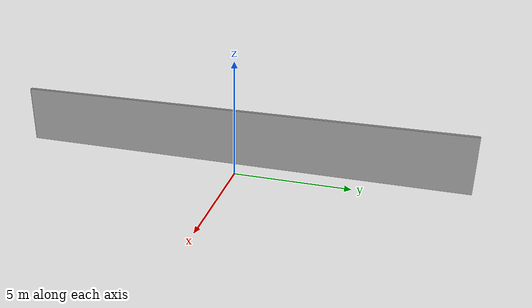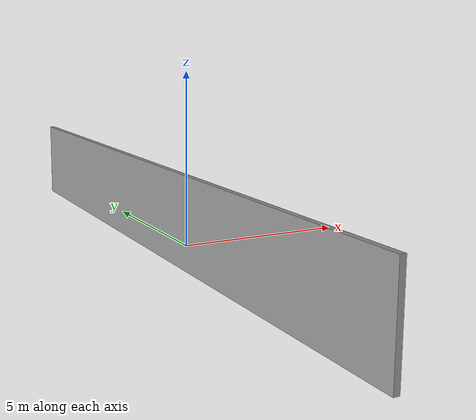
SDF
<?xml version='1.0'?>
<sdf version='1.7'>
  <model name='wall_20m'>
    <pose>-0.557278 -0.316156 0 0 -0 0</pose>
    <link name='Wall_0'>
      <collision name='Wall_0_Collision'>
        <geometry>
          <box>
            <size>20 0.15 2.5</size>
          </box>
        </geometry>
        <pose>0 0 1.25 0 -0 0</pose>
      </collision>
      <visual name='Wall_0_Visual'>
        <pose>0 0 1.25 0 -0 0</pose>
        <geometry>
          <box>
            <size>20 0.15 2.5</size>
          </box>
        </geometry>
        <material>
          <script>
            <uri>file://media/materials/scripts/gazebo.material</uri>
            <name>Gazebo/Grey</name>
          </script>
          <ambient>1 1 1 1</ambient>
        </material>
        <meta>
          <layer>0</layer>
        </meta>
      </visual>
      <pose>-0.482276 -0 0 0 -0 1.5708</pose>
    </link>
    <static>1</static>
  </model>
</sdf>
